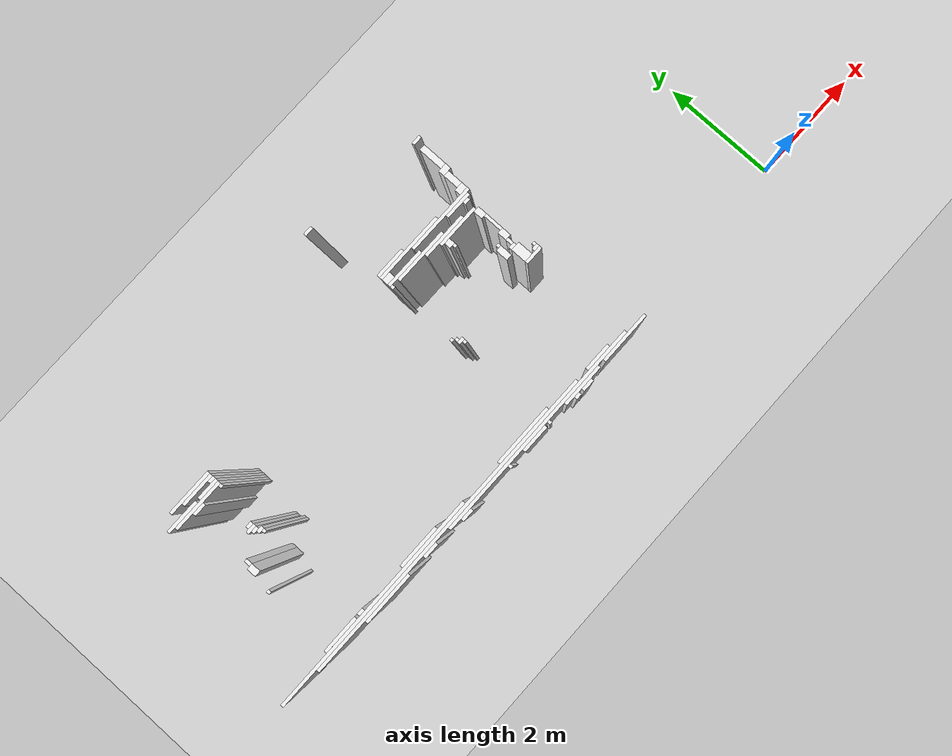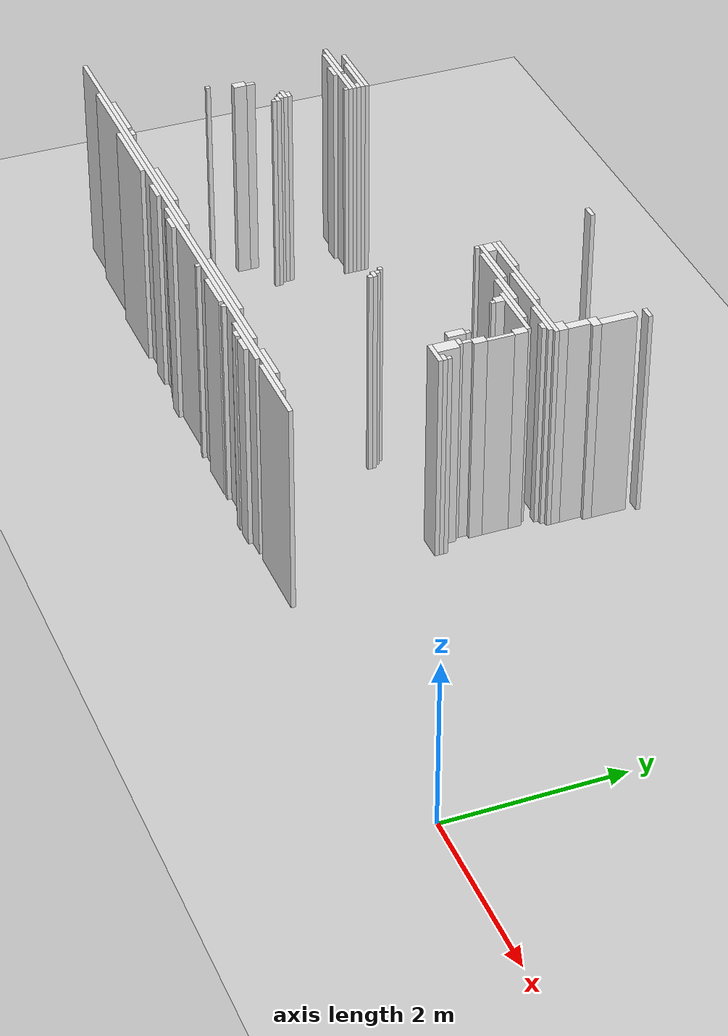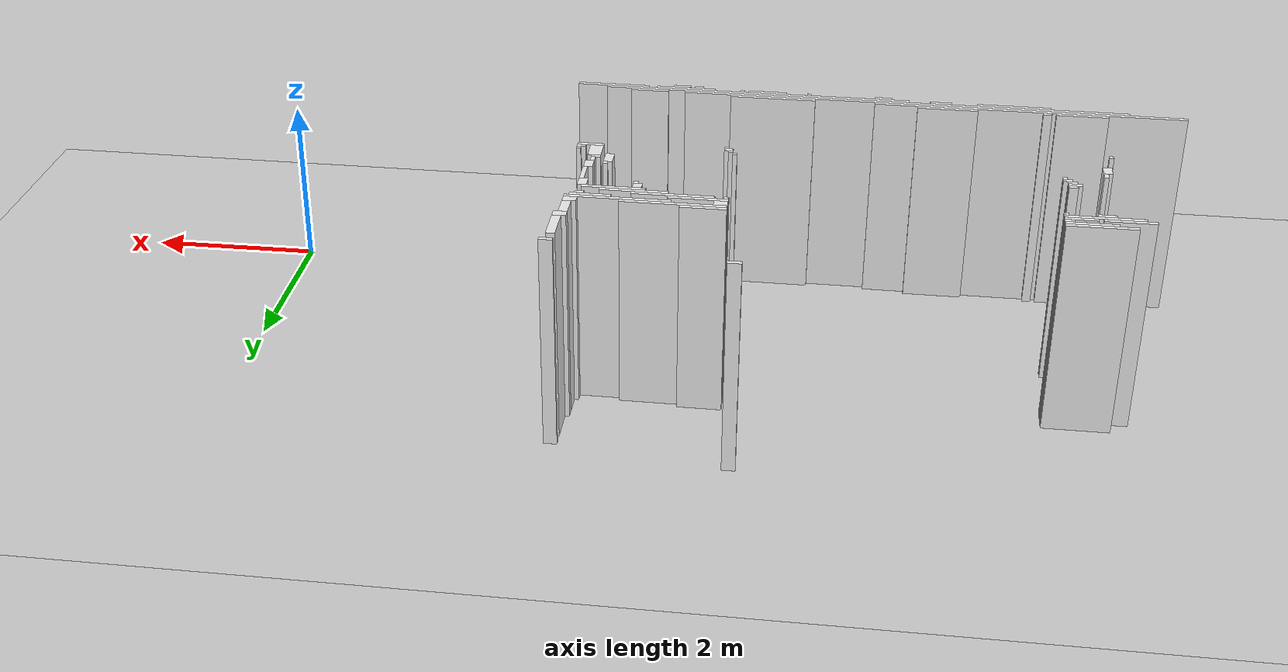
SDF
<sdf version="1.7">
 <world name="occupancy_map_world">
  <model name="ground_plane">
   <static>true</static>
   <link name="link">
    <collision name="collision">
     <geometry><plane><normal>0 0 1</normal><size>25.380000000000003 18.84</size></plane></geometry>
    </collision>
    <visual name="visual">
     <geometry><plane><normal>0 0 1</normal><size>25.380000000000003 18.84</size></plane></geometry>
     <material>
      <script><uri>file://media/materials/scripts/gazebo.material</uri><name>Gazebo/Grey</name></script>
     </material>
    </visual>
   </link>
  </model>
  <model name="wall_1">
   <static>true</static>
   <pose>-5.479000000000001 1.553 1.25 0 0 0.0</pose>
   <link name="link">
    <collision name="collision"><geometry><box><size>0.05 0.05 2.5</size></box></geometry></collision>
    <visual name="visual">
     <geometry><box><size>0.05 0.05 2.5</size></box></geometry>
     <material>
      <script><uri>file://media/materials/scripts/gazebo.material</uri><name>Gazebo/White</name></script>
     </material>
    </visual>
   </link>
  </model>
  <model name="wall_2">
   <static>true</static>
   <pose>-5.479000000000001 -0.14700000000000024 1.25 0 0 0.0</pose>
   <link name="link">
    <collision name="collision"><geometry><box><size>0.05 0.05 2.5</size></box></geometry></collision>
    <visual name="visual">
     <geometry><box><size>0.05 0.05 2.5</size></box></geometry>
     <material>
      <script><uri>file://media/materials/scripts/gazebo.material</uri><name>Gazebo/White</name></script>
     </material>
    </visual>
   </link>
  </model>
  <model name="wall_16">
   <static>true</static>
   <pose>-7.154 -0.14700000000000024 1.25 0 0 0.0</pose>
   <link name="link">
    <collision name="collision"><geometry><box><size>0.2 0.05 2.5</size></box></geometry></collision>
    <visual name="visual">
     <geometry><box><size>0.2 0.05 2.5</size></box></geometry>
     <material>
      <script><uri>file://media/materials/scripts/gazebo.material</uri><name>Gazebo/White</name></script>
     </material>
    </visual>
   </link>
  </model>
  <model name="wall_23">
   <static>true</static>
   <pose>-3.779 1.6529999999999996 1.25 0 0 0.0</pose>
   <link name="link">
    <collision name="collision"><geometry><box><size>0.05 0.05 2.5</size></box></geometry></collision>
    <visual name="visual">
     <geometry><box><size>0.05 0.05 2.5</size></box></geometry>
     <material>
      <script><uri>file://media/materials/scripts/gazebo.material</uri><name>Gazebo/White</name></script>
     </material>
    </visual>
   </link>
  </model>
  <model name="wall_28">
   <static>true</static>
   <pose>-3.8040000000000003 3.5279999999999996 1.25 0 0 0.0</pose>
   <link name="link">
    <collision name="collision"><geometry><box><size>0.1 0.4 2.5</size></box></geometry></collision>
    <visual name="visual">
     <geometry><box><size>0.1 0.4 2.5</size></box></geometry>
     <material>
      <script><uri>file://media/materials/scripts/gazebo.material</uri><name>Gazebo/White</name></script>
     </material>
    </visual>
   </link>
  </model>
  <model name="wall_29">
   <static>true</static>
   <pose>-3.8040000000000003 1.6029999999999998 1.25 0 0 0.0</pose>
   <link name="link">
    <collision name="collision"><geometry><box><size>0.1 0.05 2.5</size></box></geometry></collision>
    <visual name="visual">
     <geometry><box><size>0.1 0.05 2.5</size></box></geometry>
     <material>
      <script><uri>file://media/materials/scripts/gazebo.material</uri><name>Gazebo/White</name></script>
     </material>
    </visual>
   </link>
  </model>
  <model name="wall_33">
   <static>true</static>
   <pose>-3.779 3.8530000000000006 1.25 0 0 0.0</pose>
   <link name="link">
    <collision name="collision">
     <geometry><box><size>0.15000000000000002 0.05 2.5</size></box></geometry>
    </collision>
    <visual name="visual">
     <geometry><box><size>0.15000000000000002 0.05 2.5</size></box></geometry>
     <material>
      <script><uri>file://media/materials/scripts/gazebo.material</uri><name>Gazebo/White</name></script>
     </material>
    </visual>
   </link>
  </model>
  <model name="wall_44">
   <static>true</static>
   <pose>-3.854000000000001 3.1029999999999998 1.25 0 0 0.0</pose>
   <link name="link">
    <collision name="collision"><geometry><box><size>0.1 0.25 2.5</size></box></geometry></collision>
    <visual name="visual">
     <geometry><box><size>0.1 0.25 2.5</size></box></geometry>
     <material>
      <script><uri>file://media/materials/scripts/gazebo.material</uri><name>Gazebo/White</name></script>
     </material>
    </visual>
   </link>
  </model>
  <model name="wall_123">
   <static>true</static>
   <pose>-3.8290000000000006 3.2779999999999996 1.25 0 0 0.0</pose>
   <link name="link">
    <collision name="collision">
     <geometry><box><size>0.15000000000000002 0.1 2.5</size></box></geometry>
    </collision>
    <visual name="visual">
     <geometry><box><size>0.15000000000000002 0.1 2.5</size></box></geometry>
     <material>
      <script><uri>file://media/materials/scripts/gazebo.material</uri><name>Gazebo/White</name></script>
     </material>
    </visual>
   </link>
  </model>
  <model name="wall_158">
   <static>true</static>
   <pose>-3.8790000000000013 2.928 1.25 0 0 0.0</pose>
   <link name="link">
    <collision name="collision">
     <geometry><box><size>0.15000000000000002 0.1 2.5</size></box></geometry>
    </collision>
    <visual name="visual">
     <geometry><box><size>0.15000000000000002 0.1 2.5</size></box></geometry>
     <material>
      <script><uri>file://media/materials/scripts/gazebo.material</uri><name>Gazebo/White</name></script>
     </material>
    </visual>
   </link>
  </model>
  <model name="wall_190">
   <static>true</static>
   <pose>-3.9290000000000003 2.2779999999999996 1.25 0 0 0.0</pose>
   <link name="link">
    <collision name="collision">
     <geometry><box><size>0.05 0.30000000000000004 2.5</size></box></geometry>
    </collision>
    <visual name="visual">
     <geometry><box><size>0.05 0.30000000000000004 2.5</size></box></geometry>
     <material>
      <script><uri>file://media/materials/scripts/gazebo.material</uri><name>Gazebo/White</name></script>
     </material>
    </visual>
   </link>
  </model>
  <model name="wall_226">
   <static>true</static>
   <pose>-5.729000000000001 4.103000000000001 1.25 0 0 0.0</pose>
   <link name="link">
    <collision name="collision">
     <geometry><box><size>0.15000000000000002 0.05 2.5</size></box></geometry>
    </collision>
    <visual name="visual">
     <geometry><box><size>0.15000000000000002 0.05 2.5</size></box></geometry>
     <material>
      <script><uri>file://media/materials/scripts/gazebo.material</uri><name>Gazebo/White</name></script>
     </material>
    </visual>
   </link>
  </model>
  <model name="wall_254">
   <static>true</static>
   <pose>-5.304 2.9530000000000003 1.25 0 0 0.0</pose>
   <link name="link">
    <collision name="collision"><geometry><box><size>0.5 0.05 2.5</size></box></geometry></collision>
    <visual name="visual">
     <geometry><box><size>0.5 0.05 2.5</size></box></geometry>
     <material>
      <script><uri>file://media/materials/scripts/gazebo.material</uri><name>Gazebo/White</name></script>
     </material>
    </visual>
   </link>
  </model>
  <model name="wall_256">
   <static>true</static>
   <pose>-4.979000000000001 2.9029999999999996 1.25 0 0 0.0</pose>
   <link name="link">
    <collision name="collision">
     <geometry><box><size>1.1500000000000001 0.05 2.5</size></box></geometry>
    </collision>
    <visual name="visual">
     <geometry><box><size>1.1500000000000001 0.05 2.5</size></box></geometry>
     <material>
      <script><uri>file://media/materials/scripts/gazebo.material</uri><name>Gazebo/White</name></script>
     </material>
    </visual>
   </link>
  </model>
  <model name="wall_258">
   <static>true</static>
   <pose>-9.429 2.8529999999999998 1.25 0 0 0.0</pose>
   <link name="link">
    <collision name="collision"><geometry><box><size>0.75 0.05 2.5</size></box></geometry></collision>
    <visual name="visual">
     <geometry><box><size>0.75 0.05 2.5</size></box></geometry>
     <material>
      <script><uri>file://media/materials/scripts/gazebo.material</uri><name>Gazebo/White</name></script>
     </material>
    </visual>
   </link>
  </model>
  <model name="wall_259">
   <static>true</static>
   <pose>-5.479000000000001 2.8280000000000003 1.25 0 0 0.0</pose>
   <link name="link">
    <collision name="collision">
     <geometry><box><size>0.15000000000000002 0.1 2.5</size></box></geometry>
    </collision>
    <visual name="visual">
     <geometry><box><size>0.15000000000000002 0.1 2.5</size></box></geometry>
     <material>
      <script><uri>file://media/materials/scripts/gazebo.material</uri><name>Gazebo/White</name></script>
     </material>
    </visual>
   </link>
  </model>
  <model name="wall_260">
   <static>true</static>
   <pose>-4.379000000000001 2.8529999999999998 1.25 0 0 0.0</pose>
   <link name="link">
    <collision name="collision">
     <geometry><box><size>1.1500000000000001 0.05 2.5</size></box></geometry>
    </collision>
    <visual name="visual">
     <geometry><box><size>1.1500000000000001 0.05 2.5</size></box></geometry>
     <material>
      <script><uri>file://media/materials/scripts/gazebo.material</uri><name>Gazebo/White</name></script>
     </material>
    </visual>
   </link>
  </model>
  <model name="wall_264">
   <static>true</static>
   <pose>-9.329 2.803 1.25 0 0 0.0</pose>
   <link name="link">
    <collision name="collision"><geometry><box><size>0.55 0.05 2.5</size></box></geometry></collision>
    <visual name="visual">
     <geometry><box><size>0.55 0.05 2.5</size></box></geometry>
     <material>
      <script><uri>file://media/materials/scripts/gazebo.material</uri><name>Gazebo/White</name></script>
     </material>
    </visual>
   </link>
  </model>
  <model name="wall_265">
   <static>true</static>
   <pose>-4.079000000000001 2.803 1.25 0 0 0.0</pose>
   <link name="link">
    <collision name="collision"><geometry><box><size>0.45 0.05 2.5</size></box></geometry></collision>
    <visual name="visual">
     <geometry><box><size>0.45 0.05 2.5</size></box></geometry>
     <material>
      <script><uri>file://media/materials/scripts/gazebo.material</uri><name>Gazebo/White</name></script>
     </material>
    </visual>
   </link>
  </model>
  <model name="wall_268">
   <static>true</static>
   <pose>-9.104000000000001 2.753 1.25 0 0 0.0</pose>
   <link name="link">
    <collision name="collision"><geometry><box><size>0.1 0.05 2.5</size></box></geometry></collision>
    <visual name="visual">
     <geometry><box><size>0.1 0.05 2.5</size></box></geometry>
     <material>
      <script><uri>file://media/materials/scripts/gazebo.material</uri><name>Gazebo/White</name></script>
     </material>
    </visual>
   </link>
  </model>
  <model name="wall_269">
   <static>true</static>
   <pose>-5.229000000000001 2.753 1.25 0 0 0.0</pose>
   <link name="link">
    <collision name="collision"><geometry><box><size>0.65 0.05 2.5</size></box></geometry></collision>
    <visual name="visual">
     <geometry><box><size>0.65 0.05 2.5</size></box></geometry>
     <material>
      <script><uri>file://media/materials/scripts/gazebo.material</uri><name>Gazebo/White</name></script>
     </material>
    </visual>
   </link>
  </model>
  <model name="wall_270">
   <static>true</static>
   <pose>-3.9540000000000006 2.753 1.25 0 0 0.0</pose>
   <link name="link">
    <collision name="collision"><geometry><box><size>0.1 0.05 2.5</size></box></geometry></collision>
    <visual name="visual">
     <geometry><box><size>0.1 0.05 2.5</size></box></geometry>
     <material>
      <script><uri>file://media/materials/scripts/gazebo.material</uri><name>Gazebo/White</name></script>
     </material>
    </visual>
   </link>
  </model>
  <model name="wall_271">
   <static>true</static>
   <pose>-3.9540000000000006 2.503 1.25 0 0 0.0</pose>
   <link name="link">
    <collision name="collision">
     <geometry><box><size>0.1 0.15000000000000002 2.5</size></box></geometry>
    </collision>
    <visual name="visual">
     <geometry><box><size>0.1 0.15000000000000002 2.5</size></box></geometry>
     <material>
      <script><uri>file://media/materials/scripts/gazebo.material</uri><name>Gazebo/White</name></script>
     </material>
    </visual>
   </link>
  </model>
  <model name="wall_272">
   <static>true</static>
   <pose>-3.9540000000000006 2.053 1.25 0 0 0.0</pose>
   <link name="link">
    <collision name="collision">
     <geometry><box><size>0.1 0.15000000000000002 2.5</size></box></geometry>
    </collision>
    <visual name="visual">
     <geometry><box><size>0.1 0.15000000000000002 2.5</size></box></geometry>
     <material>
      <script><uri>file://media/materials/scripts/gazebo.material</uri><name>Gazebo/White</name></script>
     </material>
    </visual>
   </link>
  </model>
  <model name="wall_274">
   <static>true</static>
   <pose>-9.729000000000001 2.7030000000000003 1.25 0 0 0.0</pose>
   <link name="link">
    <collision name="collision"><geometry><box><size>0.55 0.05 2.5</size></box></geometry></collision>
    <visual name="visual">
     <geometry><box><size>0.55 0.05 2.5</size></box></geometry>
     <material>
      <script><uri>file://media/materials/scripts/gazebo.material</uri><name>Gazebo/White</name></script>
     </material>
    </visual>
   </link>
  </model>
  <model name="wall_275">
   <static>true</static>
   <pose>-9.229000000000001 2.7030000000000003 1.25 0 0 0.0</pose>
   <link name="link">
    <collision name="collision">
     <geometry><box><size>0.35000000000000003 0.05 2.5</size></box></geometry>
    </collision>
    <visual name="visual">
     <geometry><box><size>0.35000000000000003 0.05 2.5</size></box></geometry>
     <material>
      <script><uri>file://media/materials/scripts/gazebo.material</uri><name>Gazebo/White</name></script>
     </material>
    </visual>
   </link>
  </model>
  <model name="wall_276">
   <static>true</static>
   <pose>-5.529 2.7030000000000003 1.25 0 0 0.0</pose>
   <link name="link">
    <collision name="collision"><geometry><box><size>0.05 0.05 2.5</size></box></geometry></collision>
    <visual name="visual">
     <geometry><box><size>0.05 0.05 2.5</size></box></geometry>
     <material>
      <script><uri>file://media/materials/scripts/gazebo.material</uri><name>Gazebo/White</name></script>
     </material>
    </visual>
   </link>
  </model>
  <model name="wall_277">
   <static>true</static>
   <pose>-5.529 1.6029999999999998 1.25 0 0 0.0</pose>
   <link name="link">
    <collision name="collision"><geometry><box><size>0.05 0.05 2.5</size></box></geometry></collision>
    <visual name="visual">
     <geometry><box><size>0.05 0.05 2.5</size></box></geometry>
     <material>
      <script><uri>file://media/materials/scripts/gazebo.material</uri><name>Gazebo/White</name></script>
     </material>
    </visual>
   </link>
  </model>
  <model name="wall_278">
   <static>true</static>
   <pose>-4.954000000000001 2.7030000000000003 1.25 0 0 0.0</pose>
   <link name="link">
    <collision name="collision"><geometry><box><size>0.9 0.05 2.5</size></box></geometry></collision>
    <visual name="visual">
     <geometry><box><size>0.9 0.05 2.5</size></box></geometry>
     <material>
      <script><uri>file://media/materials/scripts/gazebo.material</uri><name>Gazebo/White</name></script>
     </material>
    </visual>
   </link>
  </model>
  <model name="wall_280">
   <static>true</static>
   <pose>-9.479000000000001 2.6529999999999996 1.25 0 0 0.0</pose>
   <link name="link">
    <collision name="collision">
     <geometry><box><size>0.8500000000000001 0.05 2.5</size></box></geometry>
    </collision>
    <visual name="visual">
     <geometry><box><size>0.8500000000000001 0.05 2.5</size></box></geometry>
     <material>
      <script><uri>file://media/materials/scripts/gazebo.material</uri><name>Gazebo/White</name></script>
     </material>
    </visual>
   </link>
  </model>
  <model name="wall_281">
   <static>true</static>
   <pose>-4.529 2.6529999999999996 1.25 0 0 0.0</pose>
   <link name="link">
    <collision name="collision"><geometry><box><size>0.75 0.05 2.5</size></box></geometry></collision>
    <visual name="visual">
     <geometry><box><size>0.75 0.05 2.5</size></box></geometry>
     <material>
      <script><uri>file://media/materials/scripts/gazebo.material</uri><name>Gazebo/White</name></script>
     </material>
    </visual>
   </link>
  </model>
  <model name="wall_286">
   <static>true</static>
   <pose>-9.504000000000001 2.6029999999999998 1.25 0 0 0.0</pose>
   <link name="link">
    <collision name="collision"><geometry><box><size>0.2 0.05 2.5</size></box></geometry></collision>
    <visual name="visual">
     <geometry><box><size>0.2 0.05 2.5</size></box></geometry>
     <material>
      <script><uri>file://media/materials/scripts/gazebo.material</uri><name>Gazebo/White</name></script>
     </material>
    </visual>
   </link>
  </model>
  <model name="wall_287">
   <static>true</static>
   <pose>-9.079 2.6029999999999998 1.25 0 0 0.0</pose>
   <link name="link">
    <collision name="collision"><geometry><box><size>0.05 0.05 2.5</size></box></geometry></collision>
    <visual name="visual">
     <geometry><box><size>0.05 0.05 2.5</size></box></geometry>
     <material>
      <script><uri>file://media/materials/scripts/gazebo.material</uri><name>Gazebo/White</name></script>
     </material>
    </visual>
   </link>
  </model>
  <model name="wall_288">
   <static>true</static>
   <pose>-4.304 2.6029999999999998 1.25 0 0 0.0</pose>
   <link name="link">
    <collision name="collision">
     <geometry><box><size>0.7000000000000001 0.05 2.5</size></box></geometry>
    </collision>
    <visual name="visual">
     <geometry><box><size>0.7000000000000001 0.05 2.5</size></box></geometry>
     <material>
      <script><uri>file://media/materials/scripts/gazebo.material</uri><name>Gazebo/White</name></script>
     </material>
    </visual>
   </link>
  </model>
  <model name="wall_291">
   <static>true</static>
   <pose>-4.554 2.5279999999999996 1.25 0 0 0.0</pose>
   <link name="link">
    <collision name="collision"><geometry><box><size>0.1 0.1 2.5</size></box></geometry></collision>
    <visual name="visual">
     <geometry><box><size>0.1 0.1 2.5</size></box></geometry>
     <material>
      <script><uri>file://media/materials/scripts/gazebo.material</uri><name>Gazebo/White</name></script>
     </material>
    </visual>
   </link>
  </model>
  <model name="wall_295">
   <static>true</static>
   <pose>-4.529 2.4530000000000003 1.25 0 0 0.0</pose>
   <link name="link">
    <collision name="collision"><geometry><box><size>0.05 0.05 2.5</size></box></geometry></collision>
    <visual name="visual">
     <geometry><box><size>0.05 0.05 2.5</size></box></geometry>
     <material>
      <script><uri>file://media/materials/scripts/gazebo.material</uri><name>Gazebo/White</name></script>
     </material>
    </visual>
   </link>
  </model>
  <model name="wall_307">
   <static>true</static>
   <pose>-4.129000000000001 2.003 1.25 0 0 0.0</pose>
   <link name="link">
    <collision name="collision"><geometry><box><size>0.05 0.05 2.5</size></box></geometry></collision>
    <visual name="visual">
     <geometry><box><size>0.05 0.05 2.5</size></box></geometry>
     <material>
      <script><uri>file://media/materials/scripts/gazebo.material</uri><name>Gazebo/White</name></script>
     </material>
    </visual>
   </link>
  </model>
  <model name="wall_309">
   <static>true</static>
   <pose>-9.204 1.9530000000000003 1.25 0 0 0.0</pose>
   <link name="link">
    <collision name="collision"><geometry><box><size>0.1 0.05 2.5</size></box></geometry></collision>
    <visual name="visual">
     <geometry><box><size>0.1 0.05 2.5</size></box></geometry>
     <material>
      <script><uri>file://media/materials/scripts/gazebo.material</uri><name>Gazebo/White</name></script>
     </material>
    </visual>
   </link>
  </model>
  <model name="wall_310">
   <static>true</static>
   <pose>-9.204 1.8529999999999998 1.25 0 0 0.0</pose>
   <link name="link">
    <collision name="collision"><geometry><box><size>0.1 0.05 2.5</size></box></geometry></collision>
    <visual name="visual">
     <geometry><box><size>0.1 0.05 2.5</size></box></geometry>
     <material>
      <script><uri>file://media/materials/scripts/gazebo.material</uri><name>Gazebo/White</name></script>
     </material>
    </visual>
   </link>
  </model>
  <model name="wall_311">
   <static>true</static>
   <pose>-4.154 1.8780000000000001 1.25 0 0 0.0</pose>
   <link name="link">
    <collision name="collision"><geometry><box><size>0.1 0.2 2.5</size></box></geometry></collision>
    <visual name="visual">
     <geometry><box><size>0.1 0.2 2.5</size></box></geometry>
     <material>
      <script><uri>file://media/materials/scripts/gazebo.material</uri><name>Gazebo/White</name></script>
     </material>
    </visual>
   </link>
  </model>
  <model name="wall_312">
   <static>true</static>
   <pose>-3.979000000000001 1.928 1.25 0 0 0.0</pose>
   <link name="link">
    <collision name="collision"><geometry><box><size>0.05 0.1 2.5</size></box></geometry></collision>
    <visual name="visual">
     <geometry><box><size>0.05 0.1 2.5</size></box></geometry>
     <material>
      <script><uri>file://media/materials/scripts/gazebo.material</uri><name>Gazebo/White</name></script>
     </material>
    </visual>
   </link>
  </model>
  <model name="wall_314">
   <static>true</static>
   <pose>-9.229000000000001 1.9029999999999996 1.25 0 0 0.0</pose>
   <link name="link">
    <collision name="collision">
     <geometry><box><size>0.15000000000000002 0.05 2.5</size></box></geometry>
    </collision>
    <visual name="visual">
     <geometry><box><size>0.15000000000000002 0.05 2.5</size></box></geometry>
     <material>
      <script><uri>file://media/materials/scripts/gazebo.material</uri><name>Gazebo/White</name></script>
     </material>
    </visual>
   </link>
  </model>
  <model name="wall_316">
   <static>true</static>
   <pose>-4.004000000000001 1.8529999999999998 1.25 0 0 0.0</pose>
   <link name="link">
    <collision name="collision"><geometry><box><size>0.1 0.05 2.5</size></box></geometry></collision>
    <visual name="visual">
     <geometry><box><size>0.1 0.05 2.5</size></box></geometry>
     <material>
      <script><uri>file://media/materials/scripts/gazebo.material</uri><name>Gazebo/White</name></script>
     </material>
    </visual>
   </link>
  </model>
  <model name="wall_318">
   <static>true</static>
   <pose>-9.154000000000002 1.803 1.25 0 0 0.0</pose>
   <link name="link">
    <collision name="collision"><geometry><box><size>0.1 0.05 2.5</size></box></geometry></collision>
    <visual name="visual">
     <geometry><box><size>0.1 0.05 2.5</size></box></geometry>
     <material>
      <script><uri>file://media/materials/scripts/gazebo.material</uri><name>Gazebo/White</name></script>
     </material>
    </visual>
   </link>
  </model>
  <model name="wall_319">
   <static>true</static>
   <pose>-3.979000000000001 1.7030000000000003 1.25 0 0 0.0</pose>
   <link name="link">
    <collision name="collision">
     <geometry><box><size>0.15000000000000002 0.25 2.5</size></box></geometry>
    </collision>
    <visual name="visual">
     <geometry><box><size>0.15000000000000002 0.25 2.5</size></box></geometry>
     <material>
      <script><uri>file://media/materials/scripts/gazebo.material</uri><name>Gazebo/White</name></script>
     </material>
    </visual>
   </link>
  </model>
  <model name="wall_320">
   <static>true</static>
   <pose>-9.129000000000001 1.7530000000000001 1.25 0 0 0.0</pose>
   <link name="link">
    <collision name="collision"><geometry><box><size>0.05 0.05 2.5</size></box></geometry></collision>
    <visual name="visual">
     <geometry><box><size>0.05 0.05 2.5</size></box></geometry>
     <material>
      <script><uri>file://media/materials/scripts/gazebo.material</uri><name>Gazebo/White</name></script>
     </material>
    </visual>
   </link>
  </model>
  <model name="wall_322">
   <static>true</static>
   <pose>-9.579 1.6280000000000001 1.25 0 0 0.0</pose>
   <link name="link">
    <collision name="collision"><geometry><box><size>0.05 0.1 2.5</size></box></geometry></collision>
    <visual name="visual">
     <geometry><box><size>0.05 0.1 2.5</size></box></geometry>
     <material>
      <script><uri>file://media/materials/scripts/gazebo.material</uri><name>Gazebo/White</name></script>
     </material>
    </visual>
   </link>
  </model>
  <model name="wall_323">
   <static>true</static>
   <pose>-9.604000000000001 1.5030000000000001 1.25 0 0 0.0</pose>
   <link name="link">
    <collision name="collision">
     <geometry><box><size>0.1 0.15000000000000002 2.5</size></box></geometry>
    </collision>
    <visual name="visual">
     <geometry><box><size>0.1 0.15000000000000002 2.5</size></box></geometry>
     <material>
      <script><uri>file://media/materials/scripts/gazebo.material</uri><name>Gazebo/White</name></script>
     </material>
    </visual>
   </link>
  </model>
  <model name="wall_324">
   <static>true</static>
   <pose>-3.904 1.553 1.25 0 0 0.0</pose>
   <link name="link">
    <collision name="collision">
     <geometry><box><size>0.30000000000000004 0.05 2.5</size></box></geometry>
    </collision>
    <visual name="visual">
     <geometry><box><size>0.30000000000000004 0.05 2.5</size></box></geometry>
     <material>
      <script><uri>file://media/materials/scripts/gazebo.material</uri><name>Gazebo/White</name></script>
     </material>
    </visual>
   </link>
  </model>
  <model name="wall_326">
   <static>true</static>
   <pose>-5.454000000000001 1.5030000000000001 1.25 0 0 0.0</pose>
   <link name="link">
    <collision name="collision"><geometry><box><size>0.1 0.05 2.5</size></box></geometry></collision>
    <visual name="visual">
     <geometry><box><size>0.1 0.05 2.5</size></box></geometry>
     <material>
      <script><uri>file://media/materials/scripts/gazebo.material</uri><name>Gazebo/White</name></script>
     </material>
    </visual>
   </link>
  </model>
  <model name="wall_327">
   <static>true</static>
   <pose>-5.429 1.4530000000000003 1.25 0 0 0.0</pose>
   <link name="link">
    <collision name="collision"><geometry><box><size>0.05 0.05 2.5</size></box></geometry></collision>
    <visual name="visual">
     <geometry><box><size>0.05 0.05 2.5</size></box></geometry>
     <material>
      <script><uri>file://media/materials/scripts/gazebo.material</uri><name>Gazebo/White</name></script>
     </material>
    </visual>
   </link>
  </model>
  <model name="wall_330">
   <static>true</static>
   <pose>-9.679 1.1529999999999996 1.25 0 0 0.0</pose>
   <link name="link">
    <collision name="collision"><geometry><box><size>0.05 0.05 2.5</size></box></geometry></collision>
    <visual name="visual">
     <geometry><box><size>0.05 0.05 2.5</size></box></geometry>
     <material>
      <script><uri>file://media/materials/scripts/gazebo.material</uri><name>Gazebo/White</name></script>
     </material>
    </visual>
   </link>
  </model>
  <model name="wall_342">
   <static>true</static>
   <pose>-9.454 0.052999999999999936 1.25 0 0 0.0</pose>
   <link name="link">
    <collision name="collision">
     <geometry><box><size>0.6000000000000001 0.05 2.5</size></box></geometry>
    </collision>
    <visual name="visual">
     <geometry><box><size>0.6000000000000001 0.05 2.5</size></box></geometry>
     <material>
      <script><uri>file://media/materials/scripts/gazebo.material</uri><name>Gazebo/White</name></script>
     </material>
    </visual>
   </link>
  </model>
  <model name="wall_343">
   <static>true</static>
   <pose>-9.054 0.052999999999999936 1.25 0 0 0.0</pose>
   <link name="link">
    <collision name="collision"><geometry><box><size>0.1 0.05 2.5</size></box></geometry></collision>
    <visual name="visual">
     <geometry><box><size>0.1 0.05 2.5</size></box></geometry>
     <material>
      <script><uri>file://media/materials/scripts/gazebo.material</uri><name>Gazebo/White</name></script>
     </material>
    </visual>
   </link>
  </model>
  <model name="wall_344">
   <static>true</static>
   <pose>-7.904 0.052999999999999936 1.25 0 0 0.0</pose>
   <link name="link">
    <collision name="collision">
     <geometry><box><size>0.7000000000000001 0.05 2.5</size></box></geometry>
    </collision>
    <visual name="visual">
     <geometry><box><size>0.7000000000000001 0.05 2.5</size></box></geometry>
     <material>
      <script><uri>file://media/materials/scripts/gazebo.material</uri><name>Gazebo/White</name></script>
     </material>
    </visual>
   </link>
  </model>
  <model name="wall_346">
   <static>true</static>
   <pose>-8.854000000000001 0.0030000000000001137 1.25 0 0 0.0</pose>
   <link name="link">
    <collision name="collision"><geometry><box><size>3.6 0.05 2.5</size></box></geometry></collision>
    <visual name="visual">
     <geometry><box><size>3.6 0.05 2.5</size></box></geometry>
     <material>
      <script><uri>file://media/materials/scripts/gazebo.material</uri><name>Gazebo/White</name></script>
     </material>
    </visual>
   </link>
  </model>
  <model name="wall_347">
   <static>true</static>
   <pose>-5.854000000000001 0.0030000000000001137 1.25 0 0 0.0</pose>
   <link name="link">
    <collision name="collision"><geometry><box><size>1.0 0.05 2.5</size></box></geometry></collision>
    <visual name="visual">
     <geometry><box><size>1.0 0.05 2.5</size></box></geometry>
     <material>
      <script><uri>file://media/materials/scripts/gazebo.material</uri><name>Gazebo/White</name></script>
     </material>
    </visual>
   </link>
  </model>
  <model name="wall_349">
   <static>true</static>
   <pose>-7.404 -0.0470000000000006 1.25 0 0 0.0</pose>
   <link name="link">
    <collision name="collision"><geometry><box><size>5.2 0.05 2.5</size></box></geometry></collision>
    <visual name="visual">
     <geometry><box><size>5.2 0.05 2.5</size></box></geometry>
     <material>
      <script><uri>file://media/materials/scripts/gazebo.material</uri><name>Gazebo/White</name></script>
     </material>
    </visual>
   </link>
  </model>
  <model name="wall_350">
   <static>true</static>
   <pose>-4.379000000000001 -0.0470000000000006 1.25 0 0 0.0</pose>
   <link name="link">
    <collision name="collision"><geometry><box><size>0.45 0.05 2.5</size></box></geometry></collision>
    <visual name="visual">
     <geometry><box><size>0.45 0.05 2.5</size></box></geometry>
     <material>
      <script><uri>file://media/materials/scripts/gazebo.material</uri><name>Gazebo/White</name></script>
     </material>
    </visual>
   </link>
  </model>
  <model name="wall_353">
   <static>true</static>
   <pose>-8.679 -0.09700000000000042 1.25 0 0 0.0</pose>
   <link name="link">
    <collision name="collision">
     <geometry><box><size>0.8500000000000001 0.05 2.5</size></box></geometry>
    </collision>
    <visual name="visual">
     <geometry><box><size>0.8500000000000001 0.05 2.5</size></box></geometry>
     <material>
      <script><uri>file://media/materials/scripts/gazebo.material</uri><name>Gazebo/White</name></script>
     </material>
    </visual>
   </link>
  </model>
  <model name="wall_354">
   <static>true</static>
   <pose>-7.829000000000001 -0.09700000000000042 1.25 0 0 0.0</pose>
   <link name="link">
    <collision name="collision"><geometry><box><size>0.25 0.05 2.5</size></box></geometry></collision>
    <visual name="visual">
     <geometry><box><size>0.25 0.05 2.5</size></box></geometry>
     <material>
      <script><uri>file://media/materials/scripts/gazebo.material</uri><name>Gazebo/White</name></script>
     </material>
    </visual>
   </link>
  </model>
  <model name="wall_355">
   <static>true</static>
   <pose>-5.654 -0.09700000000000042 1.25 0 0 0.0</pose>
   <link name="link">
    <collision name="collision"><geometry><box><size>3.6 0.05 2.5</size></box></geometry></collision>
    <visual name="visual">
     <geometry><box><size>3.6 0.05 2.5</size></box></geometry>
     <material>
      <script><uri>file://media/materials/scripts/gazebo.material</uri><name>Gazebo/White</name></script>
     </material>
    </visual>
   </link>
  </model>
  <model name="wall_357">
   <static>true</static>
   <pose>-6.279 -0.14700000000000024 1.25 0 0 0.0</pose>
   <link name="link">
    <collision name="collision"><geometry><box><size>0.05 0.05 2.5</size></box></geometry></collision>
    <visual name="visual">
     <geometry><box><size>0.05 0.05 2.5</size></box></geometry>
     <material>
      <script><uri>file://media/materials/scripts/gazebo.material</uri><name>Gazebo/White</name></script>
     </material>
    </visual>
   </link>
  </model>
  <model name="wall_358">
   <static>true</static>
   <pose>-5.779 -0.14700000000000024 1.25 0 0 0.0</pose>
   <link name="link">
    <collision name="collision"><geometry><box><size>0.45 0.05 2.5</size></box></geometry></collision>
    <visual name="visual">
     <geometry><box><size>0.45 0.05 2.5</size></box></geometry>
     <material>
      <script><uri>file://media/materials/scripts/gazebo.material</uri><name>Gazebo/White</name></script>
     </material>
    </visual>
   </link>
  </model>
  <model name="wall_359">
   <static>true</static>
   <pose>-4.804 -0.14700000000000024 1.25 0 0 0.0</pose>
   <link name="link">
    <collision name="collision">
     <geometry><box><size>0.7000000000000001 0.05 2.5</size></box></geometry>
    </collision>
    <visual name="visual">
     <geometry><box><size>0.7000000000000001 0.05 2.5</size></box></geometry>
     <material>
      <script><uri>file://media/materials/scripts/gazebo.material</uri><name>Gazebo/White</name></script>
     </material>
    </visual>
   </link>
  </model>
  <model name="wall_360">
   <static>true</static>
   <pose>-3.9290000000000003 -0.14700000000000024 1.25 0 0 0.0</pose>
   <link name="link">
    <collision name="collision">
     <geometry><box><size>0.8500000000000001 0.05 2.5</size></box></geometry>
    </collision>
    <visual name="visual">
     <geometry><box><size>0.8500000000000001 0.05 2.5</size></box></geometry>
     <material>
      <script><uri>file://media/materials/scripts/gazebo.material</uri><name>Gazebo/White</name></script>
     </material>
    </visual>
   </link>
  </model>
  <model name="wall_363">
   <static>true</static>
   <pose>-4.954000000000001 -0.19700000000000006 1.25 0 0 0.0</pose>
   <link name="link">
    <collision name="collision"><geometry><box><size>0.1 0.05 2.5</size></box></geometry></collision>
    <visual name="visual">
     <geometry><box><size>0.1 0.05 2.5</size></box></geometry>
     <material>
      <script><uri>file://media/materials/scripts/gazebo.material</uri><name>Gazebo/White</name></script>
     </material>
    </visual>
   </link>
  </model>
  <model name="wall_364">
   <static>true</static>
   <pose>-4.754000000000001 -0.19700000000000006 1.25 0 0 0.0</pose>
   <link name="link">
    <collision name="collision"><geometry><box><size>0.2 0.05 2.5</size></box></geometry></collision>
    <visual name="visual">
     <geometry><box><size>0.2 0.05 2.5</size></box></geometry>
     <material>
      <script><uri>file://media/materials/scripts/gazebo.material</uri><name>Gazebo/White</name></script>
     </material>
    </visual>
   </link>
  </model>
  <model name="wall_436">
   <static>true</static>
   <pose>-9.079 2.6029999999999998 1.25 0 0 0.0</pose>
   <link name="link">
    <collision name="collision"><geometry><box><size>0.05 0.05 2.5</size></box></geometry></collision>
    <visual name="visual">
     <geometry><box><size>0.05 0.05 2.5</size></box></geometry>
     <material>
      <script><uri>file://media/materials/scripts/gazebo.material</uri><name>Gazebo/White</name></script>
     </material>
    </visual>
   </link>
  </model>
  <model name="wall_437">
   <static>true</static>
   <pose>-9.679 1.1529999999999996 1.25 0 0 0.0</pose>
   <link name="link">
    <collision name="collision"><geometry><box><size>0.05 0.05 2.5</size></box></geometry></collision>
    <visual name="visual">
     <geometry><box><size>0.05 0.05 2.5</size></box></geometry>
     <material>
      <script><uri>file://media/materials/scripts/gazebo.material</uri><name>Gazebo/White</name></script>
     </material>
    </visual>
   </link>
  </model>
  <model name="wall_438">
   <static>true</static>
   <pose>-9.579 1.6280000000000001 1.25 0 0 0.0</pose>
   <link name="link">
    <collision name="collision"><geometry><box><size>0.05 0.1 2.5</size></box></geometry></collision>
    <visual name="visual">
     <geometry><box><size>0.05 0.1 2.5</size></box></geometry>
     <material>
      <script><uri>file://media/materials/scripts/gazebo.material</uri><name>Gazebo/White</name></script>
     </material>
    </visual>
   </link>
  </model>
  <model name="wall_440">
   <static>true</static>
   <pose>-9.129000000000001 1.7530000000000001 1.25 0 0 0.0</pose>
   <link name="link">
    <collision name="collision"><geometry><box><size>0.05 0.05 2.5</size></box></geometry></collision>
    <visual name="visual">
     <geometry><box><size>0.05 0.05 2.5</size></box></geometry>
     <material>
      <script><uri>file://media/materials/scripts/gazebo.material</uri><name>Gazebo/White</name></script>
     </material>
    </visual>
   </link>
  </model>
  <model name="wall_447">
   <static>true</static>
   <pose>-6.279 -0.14700000000000024 1.25 0 0 0.0</pose>
   <link name="link">
    <collision name="collision"><geometry><box><size>0.05 0.05 2.5</size></box></geometry></collision>
    <visual name="visual">
     <geometry><box><size>0.05 0.05 2.5</size></box></geometry>
     <material>
      <script><uri>file://media/materials/scripts/gazebo.material</uri><name>Gazebo/White</name></script>
     </material>
    </visual>
   </link>
  </model>
  <model name="wall_448">
   <static>true</static>
   <pose>-5.479000000000001 -0.14700000000000024 1.25 0 0 0.0</pose>
   <link name="link">
    <collision name="collision"><geometry><box><size>0.05 0.05 2.5</size></box></geometry></collision>
    <visual name="visual">
     <geometry><box><size>0.05 0.05 2.5</size></box></geometry>
     <material>
      <script><uri>file://media/materials/scripts/gazebo.material</uri><name>Gazebo/White</name></script>
     </material>
    </visual>
   </link>
  </model>
  <model name="wall_450">
   <static>true</static>
   <pose>-5.529 2.7030000000000003 1.25 0 0 0.0</pose>
   <link name="link">
    <collision name="collision"><geometry><box><size>0.05 0.05 2.5</size></box></geometry></collision>
    <visual name="visual">
     <geometry><box><size>0.05 0.05 2.5</size></box></geometry>
     <material>
      <script><uri>file://media/materials/scripts/gazebo.material</uri><name>Gazebo/White</name></script>
     </material>
    </visual>
   </link>
  </model>
  <model name="wall_451">
   <static>true</static>
   <pose>-5.529 1.6029999999999998 1.25 0 0 0.0</pose>
   <link name="link">
    <collision name="collision"><geometry><box><size>0.05 0.05 2.5</size></box></geometry></collision>
    <visual name="visual">
     <geometry><box><size>0.05 0.05 2.5</size></box></geometry>
     <material>
      <script><uri>file://media/materials/scripts/gazebo.material</uri><name>Gazebo/White</name></script>
     </material>
    </visual>
   </link>
  </model>
  <model name="wall_453">
   <static>true</static>
   <pose>-5.479000000000001 1.553 1.25 0 0 0.0</pose>
   <link name="link">
    <collision name="collision"><geometry><box><size>0.05 0.05 2.5</size></box></geometry></collision>
    <visual name="visual">
     <geometry><box><size>0.05 0.05 2.5</size></box></geometry>
     <material>
      <script><uri>file://media/materials/scripts/gazebo.material</uri><name>Gazebo/White</name></script>
     </material>
    </visual>
   </link>
  </model>
  <model name="wall_454">
   <static>true</static>
   <pose>-5.429 1.4530000000000003 1.25 0 0 0.0</pose>
   <link name="link">
    <collision name="collision"><geometry><box><size>0.05 0.05 2.5</size></box></geometry></collision>
    <visual name="visual">
     <geometry><box><size>0.05 0.05 2.5</size></box></geometry>
     <material>
      <script><uri>file://media/materials/scripts/gazebo.material</uri><name>Gazebo/White</name></script>
     </material>
    </visual>
   </link>
  </model>
  <model name="wall_457">
   <static>true</static>
   <pose>-4.529 2.4530000000000003 1.25 0 0 0.0</pose>
   <link name="link">
    <collision name="collision"><geometry><box><size>0.05 0.05 2.5</size></box></geometry></collision>
    <visual name="visual">
     <geometry><box><size>0.05 0.05 2.5</size></box></geometry>
     <material>
      <script><uri>file://media/materials/scripts/gazebo.material</uri><name>Gazebo/White</name></script>
     </material>
    </visual>
   </link>
  </model>
  <model name="wall_459">
   <static>true</static>
   <pose>-4.129000000000001 2.003 1.25 0 0 0.0</pose>
   <link name="link">
    <collision name="collision"><geometry><box><size>0.05 0.05 2.5</size></box></geometry></collision>
    <visual name="visual">
     <geometry><box><size>0.05 0.05 2.5</size></box></geometry>
     <material>
      <script><uri>file://media/materials/scripts/gazebo.material</uri><name>Gazebo/White</name></script>
     </material>
    </visual>
   </link>
  </model>
  <model name="wall_460">
   <static>true</static>
   <pose>-3.979000000000001 1.928 1.25 0 0 0.0</pose>
   <link name="link">
    <collision name="collision"><geometry><box><size>0.05 0.1 2.5</size></box></geometry></collision>
    <visual name="visual">
     <geometry><box><size>0.05 0.1 2.5</size></box></geometry>
     <material>
      <script><uri>file://media/materials/scripts/gazebo.material</uri><name>Gazebo/White</name></script>
     </material>
    </visual>
   </link>
  </model>
  <model name="wall_462">
   <static>true</static>
   <pose>-3.9290000000000003 2.2779999999999996 1.25 0 0 0.0</pose>
   <link name="link">
    <collision name="collision">
     <geometry><box><size>0.05 0.30000000000000004 2.5</size></box></geometry>
    </collision>
    <visual name="visual">
     <geometry><box><size>0.05 0.30000000000000004 2.5</size></box></geometry>
     <material>
      <script><uri>file://media/materials/scripts/gazebo.material</uri><name>Gazebo/White</name></script>
     </material>
    </visual>
   </link>
  </model>
  <model name="wall_466">
   <static>true</static>
   <pose>-3.779 1.6529999999999996 1.25 0 0 0.0</pose>
   <link name="link">
    <collision name="collision"><geometry><box><size>0.05 0.05 2.5</size></box></geometry></collision>
    <visual name="visual">
     <geometry><box><size>0.05 0.05 2.5</size></box></geometry>
     <material>
      <script><uri>file://media/materials/scripts/gazebo.material</uri><name>Gazebo/White</name></script>
     </material>
    </visual>
   </link>
  </model>
 </world>
</sdf>
